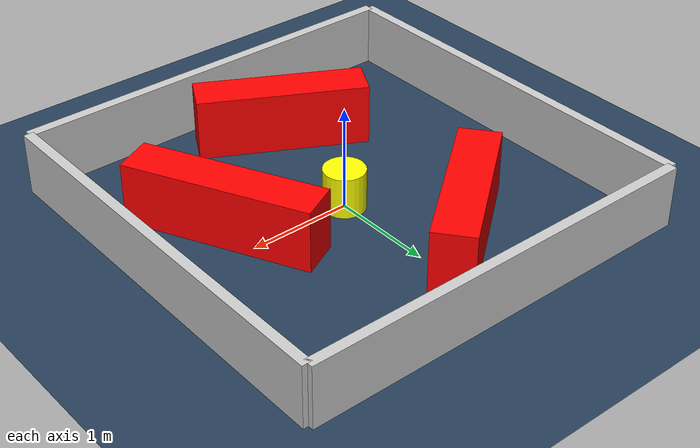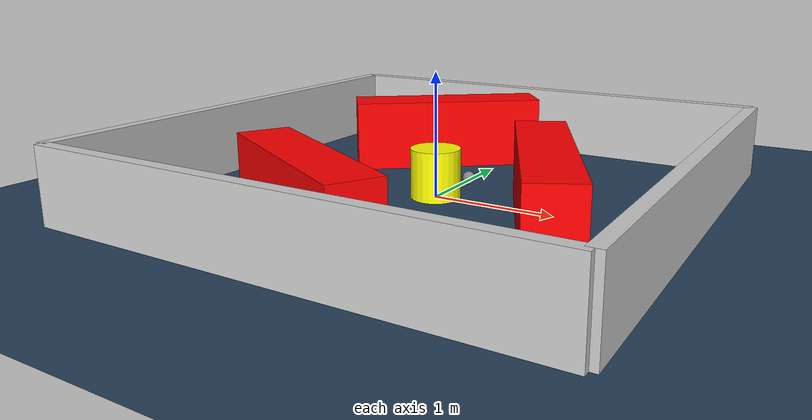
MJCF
<?xml version="1.0" ?>
<mujoco model="generated_environment">
  <option timestep="0.01" integrator="RK4" cone="elliptic"/>
  <default>
    <geom density="1"/>
  </default>
  <asset>
    <texture builtin="gradient" height="3072" rgb1="0.3 0.5 0.7" rgb2="0 0 0" type="skybox" width="512"/>
    <texture builtin="checker" height="300" mark="edge" markrgb="0.8 0.8 0.8" name="groundplane" rgb1="0.2 0.3 0.4" rgb2="0.1 0.2 0.3" type="2d" width="300"/>
    <material name="groundplane" reflectance="0.2" texrepeat="5 5" texture="groundplane" texuniform="true"/>
    <material name="robot" rgba="0.0 1.0 0.0 1"/>
  </asset>
  <worldbody>
    <light dir="0 0 -1" directional="true" pos="0 0 1.5"/>
    <geom condim="4" friction="1.0 0.005 0.001" material="groundplane" name="floor" size="0 0 0.05" type="plane"/>
    <body name="walls">
      <geom name="wall_1" condim="4" pos="-2.0 0.0 0.3" rgba="0.800000011920929 0.800000011920929 0.800000011920929 1.0" size="0.05 2.0 0.3" type="box"/>
      <geom name="wall_2" condim="4" pos="2.0 0.0 0.3" rgba="0.800000011920929 0.800000011920929 0.800000011920929 1.0" size="0.05 2.0 0.3" type="box"/>
      <geom name="wall_3" condim="4" pos="0.0 -2.0 0.3" rgba="0.800000011920929 0.800000011920929 0.800000011920929 1.0" size="2.0 0.05 0.3" type="box"/>
      <geom name="wall_4" condim="4" pos="0.0 2.0 0.3" rgba="0.800000011920929 0.800000011920929 0.800000011920929 1.0" size="2.0 0.05 0.3" type="box"/>
    </body>
    <body name="robot">
      <joint name="joint_x" type="slide" pos="0 0 0" axis="1 0 0"/>
      <joint name="joint_y" type="slide" pos="0 0 0" axis="0 1 0"/>
      <geom name="robot" type="sphere" pos="0.3 0.0 0.2" size="0.05" mass="5." friction="1.0 0.005 0.0001" condim="4" rgba="0.5 0.5 0.5 1.0"/>
      <site name="sensor_ball"/>
    </body>
    <body name="obstacle_movable_1">
      <geom name="obstacle_movable_1" condim="4" pos="0.0 0.0 0.2" euler="0 0 0.0" friction="1.0 0.005 0.001" rgba="1.0 1.0 0.0 1.0" size="0.2 0.2 0.0" type="cylinder" mass="0.1"/>
      <joint type="free"/>
    </body>
    <body name="obstacle_2_static">
      <geom name="obstacle_2_static" condim="4" pos="1.068172091604016 -0.31786044071968544 0.3" euler="0 0 296.20399611363104" friction="1.0 0.005 0.001" rgba="1 0 0 1" size="0.9038454890733112 0.2 0.3" type="box"/>
    </body>
    <body name="obstacle_3_static">
      <geom name="obstacle_3_static" condim="4" pos="-0.4973211644393095 1.0352694411686858 0.3" euler="0 0 38.16032550752433" friction="1.0 0.005 0.001" rgba="1 0 0 1" size="0.8253791358373117 0.2 0.3" type="box"/>
    </body>
    <body name="obstacle_4_static">
      <geom name="obstacle_4_static" condim="4" pos="-0.26403100861473894 -1.2652587345900588 0.3" euler="0 0 151.54342789095574" friction="1.0 0.005 0.001" rgba="1 0 0 1" size="0.8176168623064108 0.2 0.3" type="box"/>
    </body>
  </worldbody>
  <actuator>
    <motor name="actuator_x" joint="joint_x" gear="1" ctrlrange="-1 1"/>
    <motor name="actuator_y" joint="joint_y" gear="1" ctrlrange="-1 1"/>
  </actuator>
</mujoco>
